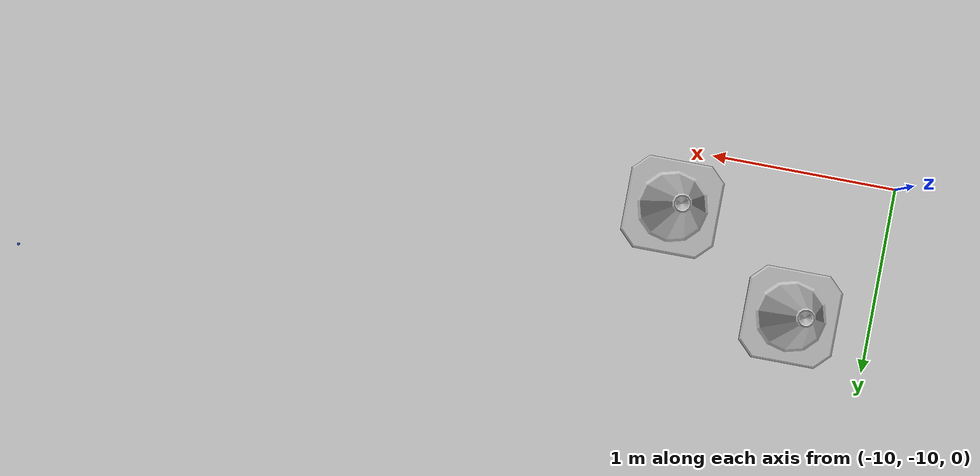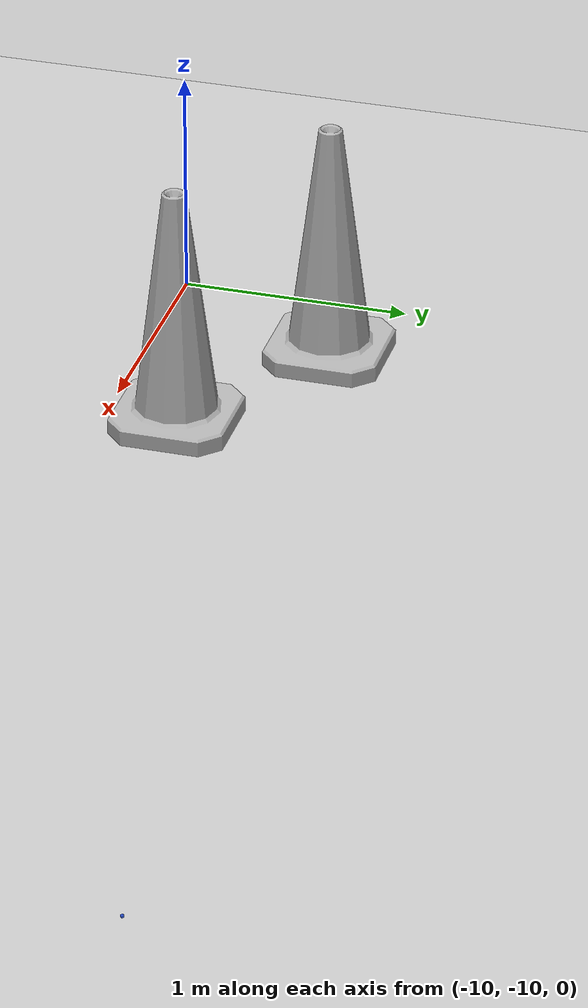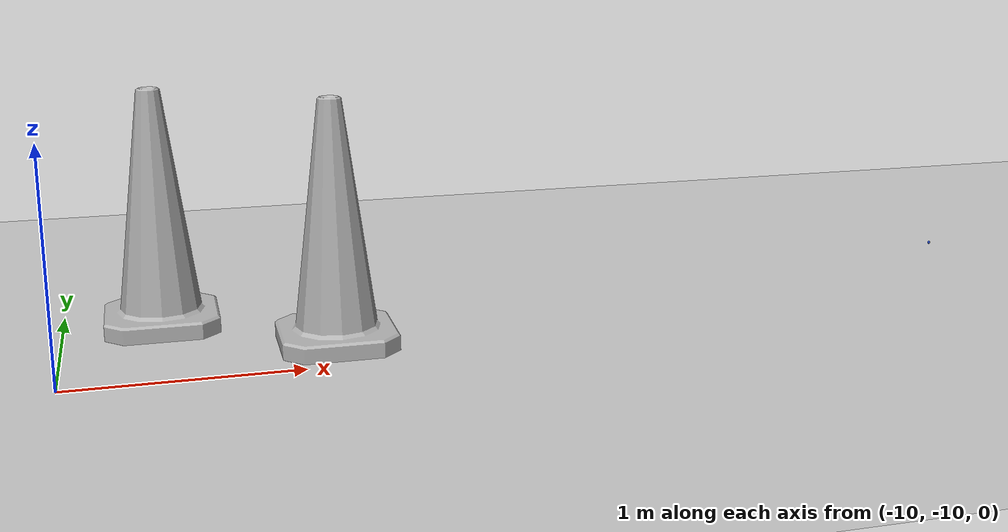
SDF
<sdf version="1.7">
 <world name="default">
  <light name="sun" type="directional">
   <pose>0 0 10 0 -0 0</pose>
   <diffuse>0.8 0.8 0.8 1</diffuse>
   <specular>0.2 0.2 0.2 1</specular>
   <attenuation>
    <range>1000</range>
    <constant>0.9</constant>
    <linear>0.01</linear>
    <quadratic>0.001</quadratic>
   </attenuation>
   <direction>-0.5 0.1 -0.9</direction>
   <spot><inner_angle>0</inner_angle><outer_angle>0</outer_angle><falloff>0</falloff></spot>
  </light>
  <model name="ground_plane">
   <static>1</static>
   <link name="link">
    <collision name="collision">
     <geometry><plane><normal>0 0 1</normal><size>100 100</size></plane></geometry>
     <surface><friction><ode><mu>100</mu><mu2>50</mu2></ode></friction></surface>
    </collision>
    <visual name="visual">
     <cast_shadows>0</cast_shadows>
     <geometry><plane><normal>0 0 1</normal><size>100 100</size></plane></geometry>
     <material>
      <script><uri>file://media/materials/scripts/gazebo.material</uri><name>Gazebo/Grey</name></script>
     </material>
    </visual>
   </link>
  </model>
  <gravity>0 0 -9.8</gravity>
  <magnetic_field>6e-06 2.3e-05 -4.2e-05</magnetic_field>
  <atmosphere type="adiabatic"/>
  <physics type="ode">
   <max_step_size>0.001</max_step_size>
   <real_time_factor>1</real_time_factor>
   <real_time_update_rate>1000</real_time_update_rate>
  </physics>
  <scene><ambient>0.4 0.4 0.4 1</ambient><background>0.7 0.7 0.7 1</background><shadows>1</shadows></scene>
  <audio><device>default</device></audio>
  <spherical_coordinates>
   <surface_model>EARTH_WGS84</surface_model>
   <latitude_deg>0</latitude_deg>
   <longitude_deg>0</longitude_deg>
   <elevation>0</elevation>
   <heading_deg>0</heading_deg>
  </spherical_coordinates>
  <model name="Construction Cone">
   <link name="link">
    <collision name="collision">
     <geometry>
      <mesh><scale>10 10 10</scale><uri>model://construction_cone/meshes/construction_cone.dae</uri></mesh>
     </geometry>
    </collision>
    <visual name="visual">
     <geometry>
      <mesh><scale>10 10 10</scale><uri>model://construction_cone/meshes/construction_cone.dae</uri></mesh>
     </geometry>
    </visual>
    <inertial>
     <inertia><ixx>1</ixx><ixy>0</ixy><ixz>0</ixz><iyy>1</iyy><iyz>0</iyz><izz>1</izz></inertia>
     <mass>1</mass>
    </inertial>
   </link>
   <pose>-8.8365 -9.6898 -0 0 -0 0</pose>
  </model>
  <model name="Construction Cone_0">
   <link name="link">
    <collision name="collision">
     <geometry>
      <mesh><scale>10 10 10</scale><uri>model://construction_cone/meshes/construction_cone.dae</uri></mesh>
     </geometry>
    </collision>
    <visual name="visual">
     <geometry>
      <mesh><scale>10 10 10</scale><uri>model://construction_cone/meshes/construction_cone.dae</uri></mesh>
     </geometry>
    </visual>
    <inertial>
     <inertia><ixx>1</ixx><ixy>0</ixy><ixz>0</ixz><iyy>1</iyy><iyz>0</iyz><izz>1</izz></inertia>
     <mass>1</mass>
    </inertial>
   </link>
   <pose>-9.56884 -9.22673 -0 0 -1e-06 0</pose>
  </model>
  <model name="marble_1_5cm">
   <link name="link">
    <pose>0 0 0.0075 0 -0 0</pose>
    <inertial>
     <mass>0.0062</mass>
     <inertia>
      <ixx>1.395e-07</ixx>
      <ixy>0</ixy>
      <ixz>0</ixz>
      <iyy>1.395e-07</iyy>
      <iyz>0</iyz>
      <izz>1.395e-07</izz>
     </inertia>
    </inertial>
    <collision name="collision">
     <geometry><sphere><radius>0.0075</radius></sphere></geometry>
     <surface>
      <contact>
       <poissons_ratio>0.22</poissons_ratio>
       <elastic_modulus>5.1e+10</elastic_modulus>
       <ode><kp>100000</kp><kd>100</kd><max_vel>100</max_vel><min_depth>0.001</min_depth></ode>
      </contact>
      <friction>
       <torsional>
        <coefficient>1</coefficient>
        <use_patch_radius>0</use_patch_radius>
        <surface_radius>0.01</surface_radius>
       </torsional>
      </friction>
     </surface>
    </collision>
    <visual name="visual">
     <geometry><sphere><radius>0.0075</radius></sphere></geometry>
     <material>
      <script><uri>file://media/materials/scripts/gazebo.material</uri><name>Gazebo/Blue</name></script>
     </material>
    </visual>
    <velocity_decay><linear>0</linear><angular>0.005</angular></velocity_decay>
   </link>
   <pose>-5.41863 -8.84762 -0.000665 0 -0 0</pose>
  </model>
 </world>
</sdf>
